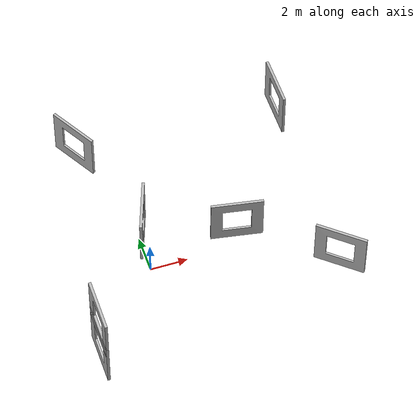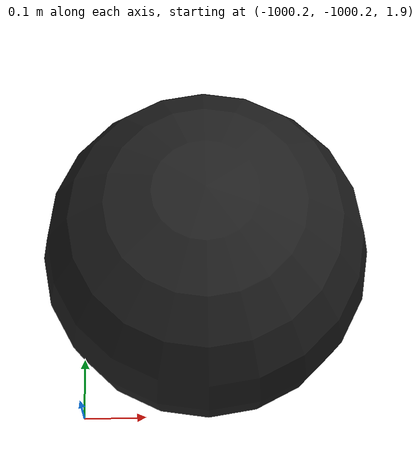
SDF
<sdf version="1.5">
 <world name="default">
  <plugin name="mrs_gazebo_static_transform_republisher_plugin" filename="libMrsGazeboCommonResources_StaticTransformRepublisher.so"/>
  <spherical_coordinates>
   <surface_model>EARTH_WGS84</surface_model>
   <latitude_deg>47.397743</latitude_deg>
   <longitude_deg>8.545594</longitude_deg>
   <elevation>0.0</elevation>
   <heading_deg>0</heading_deg>
  </spherical_coordinates>
  <physics name="default_physics" default="0" type="ode">
   <gravity>0 0 -9.8066</gravity>
   <ode>
    <solver>
     <type>quick</type>
     <iters>10</iters>
     <sor>1.3</sor>
     <use_dynamic_moi_rescaling>0</use_dynamic_moi_rescaling>
    </solver>
    <constraints>
     <cfm>0</cfm>
     <erp>0.2</erp>
     <contact_max_correcting_vel>250</contact_max_correcting_vel>
     <contact_surface_layer>0.004</contact_surface_layer>
    </constraints>
   </ode>
   <max_step_size>0.004</max_step_size>
   <real_time_factor>1</real_time_factor>
   <real_time_update_rate>250</real_time_update_rate>
   <magnetic_field>6.0e-06 2.3e-05 -4.2e-05</magnetic_field>
  </physics>
  <scene><shadows>false</shadows></scene>
  <light name="sun" type="directional">
   <pose>0 0 1000 0.4 0.2 0</pose>
   <diffuse>1 1 1 1</diffuse>
   <specular>0.6 0.6 0.6 1</specular>
   <direction>0.1 0.1 -0.9</direction>
   <attenuation>
    <range>20</range>
    <constant>0.5</constant>
    <linear>0.01</linear>
    <quadratic>0.001</quadratic>
   </attenuation>
  </light>
  <model name="the_void">
   <static>1</static>
   <link name="link">
    <pose>0 0 0.1 0 -0 0</pose>
    <visual name="the_void">
     <pose>0 0 2 0 -0 0</pose>
     <geometry><sphere><radius>0.25</radius></sphere></geometry>
     <material>
      <script><uri>file://media/materials/scripts/Gazebo.material</uri><name>Gazebo/Black</name></script>
     </material>
    </visual>
   </link>
   <pose>-1000 -1000 0 0 0 0</pose>
  </model>
  <plugin name="mrs_gazebo_rviz_cam_synchronizer" filename="libMrsGazeboCommonResources_RvizCameraSynchronizer.so">
   <target_frame_id>gazebo_user_camera</target_frame_id>
   <world_origin_frame_id>uav1/gps_origin</world_origin_frame_id>
   <frame_to_follow>uav1</frame_to_follow>
  </plugin>
  <include>
   <uri>model://gate</uri>
   <pose>-0.6 -0.86 5.68 0.0 0.0 1.22173041442114</pose>
   <name>gate0</name>
  </include>
  <include><uri>model://gate</uri><pose>9.0 6.45 3.05 0.0 0.0 1.5707963267949</pose><name>gate1</name></include>
  <include>
   <uri>model://gate</uri>
   <pose>8.85 -3.8 3.05 0.0 0.0 -0.698131685178075</pose>
   <name>gate2</name>
  </include>
  <include>
   <uri>model://gate</uri>
   <pose>-4.3 -5.6 5.4 0.0 0.0 4.71238898038469</pose>
   <name>gate3</name>
  </include>
  <include>
   <uri>model://gate</uri>
   <pose>-4.3 -5.6 3.42 0.0 0.0 1.5707963267949</pose>
   <name>gate4</name>
  </include>
  <include>
   <uri>model://gate</uri>
   <pose>4.5 -0.45 3.05 0.0 0.0 2.96705969166034</pose>
   <name>gate5</name>
  </include>
  <include>
   <uri>model://gate</uri>
   <pose>-1.95 6.81 3.05 0.0 0.0 -1.04719758765308</pose>
   <name>gate6</name>
  </include>
 </world>
</sdf>

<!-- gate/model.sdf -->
<sdf version="1.6">
  <model name="gate">
    <static>true</static>
    <link name="link">
      <visual name="visual">
        <geometry>
          <mesh>
            <scale>1 1 1</scale>
            <uri>model://gate/meshes/gate.dae</uri>
          </mesh>
        </geometry>
      </visual>
    </link>
  </model>
</sdf>
